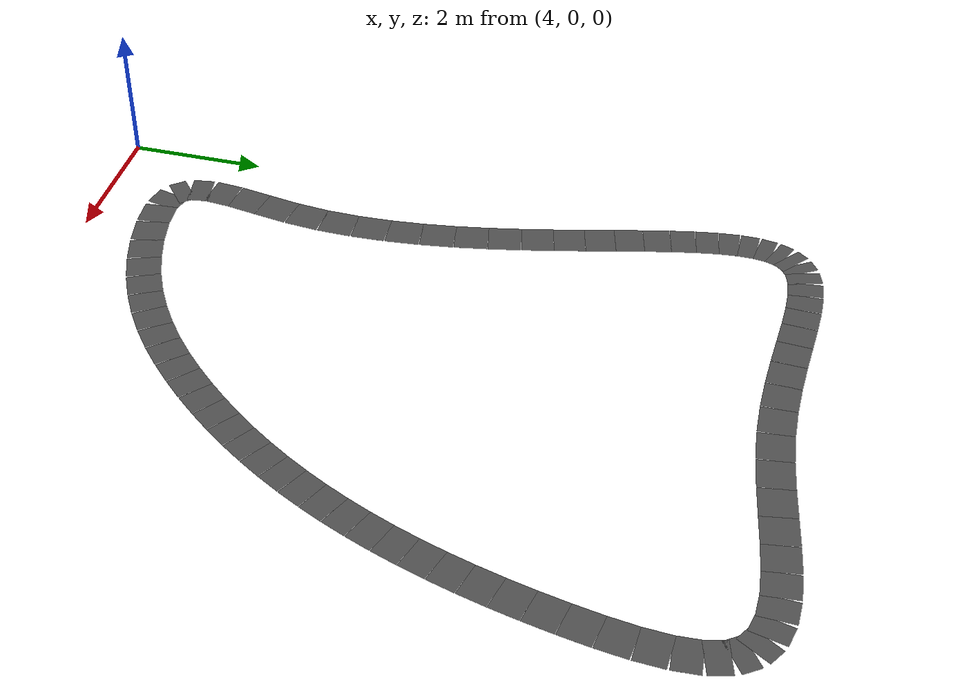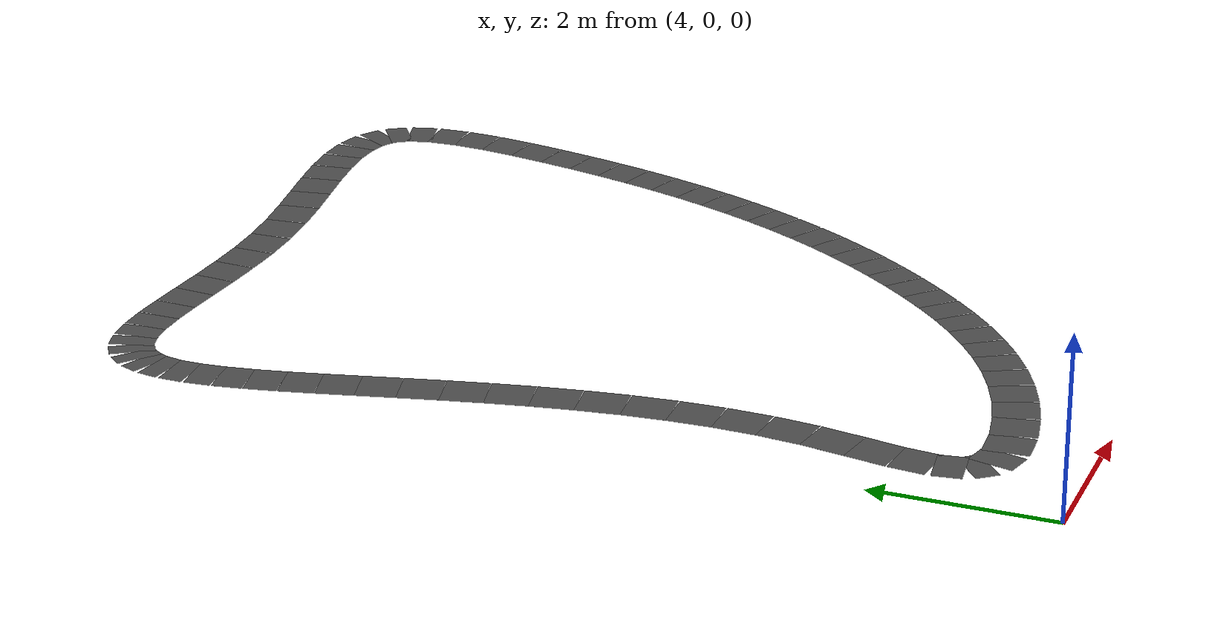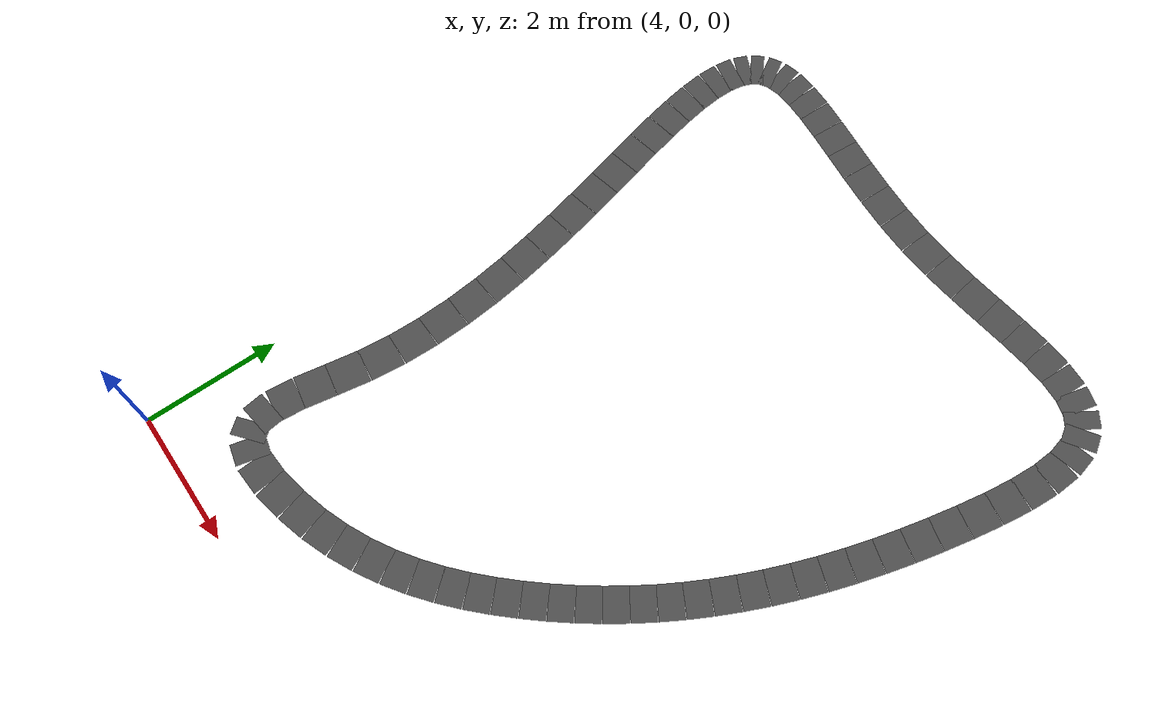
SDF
<sdf version="1.7">
 <model name="short_road">
  <model name="road_section_0">
   <static>1</static>
   <link name="road_link">
    <visual name="road_visual">
     <geometry><box><size>0.235065 0.5 0.0001</size></box></geometry>
     <material>
      <script>
       <uri>model://road_material/materials/scripts</uri>
       <uri>model://road_material/materials/textures</uri>
       <name>MyRoad/Road</name>
      </script>
     </material>
    </visual>
    <collision name="road_collision"><geometry><box><size>0.235065 0.5 0.0001</size></box></geometry></collision>
   </link>
   <pose>4.61275 10.4332 0 0 -0 0.286174</pose>
  </model>
  <model name="road_section_1">
   <static>1</static>
   <link name="road_link">
    <visual name="road_visual">
     <geometry><box><size>0.276285 0.5 0.0001</size></box></geometry>
     <material>
      <script>
       <uri>model://road_material/materials/scripts</uri>
       <uri>model://road_material/materials/textures</uri>
       <name>MyRoad/Road</name>
      </script>
     </material>
    </visual>
    <collision name="road_collision"><geometry><box><size>0.276285 0.5 0.0001</size></box></geometry></collision>
   </link>
   <pose>4.86285 10.4812 0 0 -0 0.107381</pose>
  </model>
  <model name="road_section_2">
   <static>1</static>
   <link name="road_link">
    <visual name="road_visual">
     <geometry><box><size>0.318657 0.5 0.0001</size></box></geometry>
     <material>
      <script>
       <uri>model://road_material/materials/scripts</uri>
       <uri>model://road_material/materials/textures</uri>
       <name>MyRoad/Road</name>
      </script>
     </material>
    </visual>
    <collision name="road_collision"><geometry><box><size>0.318657 0.5 0.0001</size></box></geometry></collision>
   </link>
   <pose>5.15953 10.4967 0 0 -0 0.004392</pose>
  </model>
  <model name="road_section_3">
   <static>1</static>
   <link name="road_link">
    <visual name="road_visual">
     <geometry><box><size>0.357855 0.5 0.0001</size></box></geometry>
     <material>
      <script>
       <uri>model://road_material/materials/scripts</uri>
       <uri>model://road_material/materials/textures</uri>
       <name>MyRoad/Road</name>
      </script>
     </material>
    </visual>
    <collision name="road_collision"><geometry><box><size>0.357855 0.5 0.0001</size></box></geometry></collision>
   </link>
   <pose>5.49755 10.4882 0 0 0 -0.0511</pose>
  </model>
  <model name="road_section_4">
   <static>1</static>
   <link name="road_link">
    <visual name="road_visual">
     <geometry><box><size>0.392001 0.5 0.0001</size></box></geometry>
     <material>
      <script>
       <uri>model://road_material/materials/scripts</uri>
       <uri>model://road_material/materials/textures</uri>
       <name>MyRoad/Road</name>
      </script>
     </material>
    </visual>
    <collision name="road_collision"><geometry><box><size>0.392001 0.5 0.0001</size></box></geometry></collision>
   </link>
   <pose>5.87169 10.4644 0 0 0 -0.075129</pose>
  </model>
  <model name="road_section_5">
   <static>1</static>
   <link name="road_link">
    <visual name="road_visual">
     <geometry><box><size>0.420398 0.5 0.0001</size></box></geometry>
     <material>
      <script>
       <uri>model://road_material/materials/scripts</uri>
       <uri>model://road_material/materials/textures</uri>
       <name>MyRoad/Road</name>
      </script>
     </material>
    </visual>
    <collision name="road_collision"><geometry><box><size>0.420398 0.5 0.0001</size></box></geometry></collision>
   </link>
   <pose>6.27672 10.4336 0 0 0 -0.076274</pose>
  </model>
  <model name="road_section_6">
   <static>1</static>
   <link name="road_link">
    <visual name="road_visual">
     <geometry><box><size>0.442999 0.5 0.0001</size></box></geometry>
     <material>
      <script>
       <uri>model://road_material/materials/scripts</uri>
       <uri>model://road_material/materials/textures</uri>
       <name>MyRoad/Road</name>
      </script>
     </material>
    </visual>
    <collision name="road_collision"><geometry><box><size>0.442999 0.5 0.0001</size></box></geometry></collision>
   </link>
   <pose>6.70743 10.4046 0 0 0 -0.058979</pose>
  </model>
  <model name="road_section_7">
   <static>1</static>
   <link name="road_link">
    <visual name="road_visual">
     <geometry><box><size>0.460202 0.5 0.0001</size></box></geometry>
     <material>
      <script>
       <uri>model://road_material/materials/scripts</uri>
       <uri>model://road_material/materials/textures</uri>
       <name>MyRoad/Road</name>
      </script>
     </material>
    </visual>
    <collision name="road_collision"><geometry><box><size>0.460202 0.5 0.0001</size></box></geometry></collision>
   </link>
   <pose>7.15857 10.3857 0 0 0 -0.025334</pose>
  </model>
  <model name="road_section_8">
   <static>1</static>
   <link name="road_link">
    <visual name="road_visual">
     <geometry><box><size>0.47279 0.5 0.0001</size></box></geometry>
     <material>
      <script>
       <uri>model://road_material/materials/scripts</uri>
       <uri>model://road_material/materials/textures</uri>
       <name>MyRoad/Road</name>
      </script>
     </material>
    </visual>
    <collision name="road_collision"><geometry><box><size>0.47279 0.5 0.0001</size></box></geometry></collision>
   </link>
   <pose>7.62492 10.3855 0 0 -0 0.023968</pose>
  </model>
  <model name="road_section_9">
   <static>1</static>
   <link name="road_link">
    <visual name="road_visual">
     <geometry><box><size>0.481596 0.5 0.0001</size></box></geometry>
     <material>
      <script>
       <uri>model://road_material/materials/scripts</uri>
       <uri>model://road_material/materials/textures</uri>
       <name>MyRoad/Road</name>
      </script>
     </material>
    </visual>
    <collision name="road_collision"><geometry><box><size>0.481596 0.5 0.0001</size></box></geometry></collision>
   </link>
   <pose>8.10115 10.412 0 0 -0 0.08637</pose>
  </model>
  <model name="road_section_10">
   <static>1</static>
   <link name="road_link">
    <visual name="road_visual">
     <geometry><box><size>0.483759 0.5 0.0001</size></box></geometry>
     <material>
      <script>
       <uri>model://road_material/materials/scripts</uri>
       <uri>model://road_material/materials/textures</uri>
       <name>MyRoad/Road</name>
      </script>
     </material>
    </visual>
    <collision name="road_collision"><geometry><box><size>0.483759 0.5 0.0001</size></box></geometry></collision>
   </link>
   <pose>8.58067 10.4657 0 0 -0 0.136697</pose>
  </model>
  <model name="road_section_11">
   <static>1</static>
   <link name="road_link">
    <visual name="road_visual">
     <geometry><box><size>0.475962 0.5 0.0001</size></box></geometry>
     <material>
      <script>
       <uri>model://road_material/materials/scripts</uri>
       <uri>model://road_material/materials/textures</uri>
       <name>MyRoad/Road</name>
      </script>
     </material>
    </visual>
    <collision name="road_collision"><geometry><box><size>0.475962 0.5 0.0001</size></box></geometry></collision>
   </link>
   <pose>9.05515 10.5371 0 0 -0 0.162422</pose>
  </model>
  <model name="road_section_12">
   <static>1</static>
   <link name="road_link">
    <visual name="road_visual">
     <geometry><box><size>0.457265 0.5 0.0001</size></box></geometry>
     <material>
      <script>
       <uri>model://road_material/materials/scripts</uri>
       <uri>model://road_material/materials/textures</uri>
       <name>MyRoad/Road</name>
      </script>
     </material>
    </visual>
    <collision name="road_collision"><geometry><box><size>0.457265 0.5 0.0001</size></box></geometry></collision>
   </link>
   <pose>9.51556 10.6129 0 0 -0 0.16385</pose>
  </model>
  <model name="road_section_13">
   <static>1</static>
   <link name="road_link">
    <visual name="road_visual">
     <geometry><box><size>0.427635 0.5 0.0001</size></box></geometry>
     <material>
      <script>
       <uri>model://road_material/materials/scripts</uri>
       <uri>model://road_material/materials/textures</uri>
       <name>MyRoad/Road</name>
      </script>
     </material>
    </visual>
    <collision name="road_collision"><geometry><box><size>0.427635 0.5 0.0001</size></box></geometry></collision>
   </link>
   <pose>9.95292 10.6796 0 0 -0 0.137902</pose>
  </model>
  <model name="road_section_14">
   <static>1</static>
   <link name="road_link">
    <visual name="road_visual">
     <geometry><box><size>0.388128 0.5 0.0001</size></box></geometry>
     <material>
      <script>
       <uri>model://road_material/materials/scripts</uri>
       <uri>model://road_material/materials/textures</uri>
       <name>MyRoad/Road</name>
      </script>
     </material>
    </visual>
    <collision name="road_collision"><geometry><box><size>0.388128 0.5 0.0001</size></box></geometry></collision>
   </link>
   <pose>10.3582 10.7238 0 0 -0 0.076229</pose>
  </model>
  <model name="road_section_15">
   <static>1</static>
   <link name="road_link">
    <visual name="road_visual">
     <geometry><box><size>0.341669 0.5 0.0001</size></box></geometry>
     <material>
      <script>
       <uri>model://road_material/materials/scripts</uri>
       <uri>model://road_material/materials/textures</uri>
       <name>MyRoad/Road</name>
      </script>
     </material>
    </visual>
    <collision name="road_collision"><geometry><box><size>0.341669 0.5 0.0001</size></box></geometry></collision>
   </link>
   <pose>10.7224 10.732 0 0 0 -0.03833</pose>
  </model>
  <model name="road_section_16">
   <static>1</static>
   <link name="road_link">
    <visual name="road_visual">
     <geometry><box><size>0.295047 0.5 0.0001</size></box></geometry>
     <material>
      <script>
       <uri>model://road_material/materials/scripts</uri>
       <uri>model://road_material/materials/textures</uri>
       <name>MyRoad/Road</name>
      </script>
     </material>
    </visual>
    <collision name="road_collision"><geometry><box><size>0.295047 0.5 0.0001</size></box></geometry></collision>
   </link>
   <pose>11.0365 10.6909 0 0 0 -0.236631</pose>
  </model>
  <model name="road_section_17">
   <static>1</static>
   <link name="road_link">
    <visual name="road_visual">
     <geometry><box><size>0.262788 0.5 0.0001</size></box></geometry>
     <material>
      <script>
       <uri>model://road_material/materials/scripts</uri>
       <uri>model://road_material/materials/textures</uri>
       <name>MyRoad/Road</name>
      </script>
     </material>
    </visual>
    <collision name="road_collision"><geometry><box><size>0.262788 0.5 0.0001</size></box></geometry></collision>
   </link>
   <pose>11.2916 10.587 0 0 0 -0.55586</pose>
  </model>
  <model name="road_section_18">
   <static>1</static>
   <link name="road_link">
    <visual name="road_visual">
     <geometry><box><size>0.267747 0.5 0.0001</size></box></geometry>
     <material>
      <script>
       <uri>model://road_material/materials/scripts</uri>
       <uri>model://road_material/materials/textures</uri>
       <name>MyRoad/Road</name>
      </script>
     </material>
    </visual>
    <collision name="road_collision"><geometry><box><size>0.267747 0.5 0.0001</size></box></geometry></collision>
   </link>
   <pose>11.4786 10.407 0 0 0 -0.972123</pose>
  </model>
  <model name="road_section_19">
   <static>1</static>
   <link name="road_link">
    <visual name="road_visual">
     <geometry><box><size>0.312787 0.5 0.0001</size></box></geometry>
     <material>
      <script>
       <uri>model://road_material/materials/scripts</uri>
       <uri>model://road_material/materials/textures</uri>
       <name>MyRoad/Road</name>
      </script>
     </material>
    </visual>
    <collision name="road_collision"><geometry><box><size>0.312787 0.5 0.0001</size></box></geometry></collision>
   </link>
   <pose>11.5937 10.1452 0 0 0 -1.31448</pose>
  </model>
  <model name="road_section_20">
   <static>1</static>
   <link name="road_link">
    <visual name="road_visual">
     <geometry><box><size>0.365935 0.5 0.0001</size></box></geometry>
     <material>
      <script>
       <uri>model://road_material/materials/scripts</uri>
       <uri>model://road_material/materials/textures</uri>
       <name>MyRoad/Road</name>
      </script>
     </material>
    </visual>
    <collision name="road_collision"><geometry><box><size>0.365935 0.5 0.0001</size></box></geometry></collision>
   </link>
   <pose>11.6434 9.81119 0 0 0 -1.5157</pose>
  </model>
  <model name="road_section_21">
   <static>1</static>
   <link name="road_link">
    <visual name="road_visual">
     <geometry><box><size>0.409355 0.5 0.0001</size></box></geometry>
     <material>
      <script>
       <uri>model://road_material/materials/scripts</uri>
       <uri>model://road_material/materials/textures</uri>
       <name>MyRoad/Road</name>
      </script>
     </material>
    </visual>
    <collision name="road_collision"><geometry><box><size>0.409355 0.5 0.0001</size></box></geometry></collision>
   </link>
   <pose>11.6406 9.42423 0 0 0 -1.63394</pose>
  </model>
  <model name="road_section_22">
   <static>1</static>
   <link name="road_link">
    <visual name="road_visual">
     <geometry><box><size>0.436008 0.5 0.0001</size></box></geometry>
     <material>
      <script>
       <uri>model://road_material/materials/scripts</uri>
       <uri>model://road_material/materials/textures</uri>
       <name>MyRoad/Road</name>
      </script>
     </material>
    </visual>
    <collision name="road_collision"><geometry><box><size>0.436008 0.5 0.0001</size></box></geometry></collision>
   </link>
   <pose>11.5984 9.00394 0 0 0 -1.70571</pose>
  </model>
  <model name="road_section_23">
   <static>1</static>
   <link name="road_link">
    <visual name="road_visual">
     <geometry><box><size>0.442881 0.5 0.0001</size></box></geometry>
     <material>
      <script>
       <uri>model://road_material/materials/scripts</uri>
       <uri>model://road_material/materials/textures</uri>
       <name>MyRoad/Road</name>
      </script>
     </material>
    </visual>
    <collision name="road_collision"><geometry><box><size>0.442881 0.5 0.0001</size></box></geometry></collision>
   </link>
   <pose>11.5299 8.56996 0 0 0 -1.74853</pose>
  </model>
  <model name="road_section_24">
   <static>1</static>
   <link name="road_link">
    <visual name="road_visual">
     <geometry><box><size>0.43368 0.5 0.0001</size></box></geometry>
     <material>
      <script>
       <uri>model://road_material/materials/scripts</uri>
       <uri>model://road_material/materials/textures</uri>
       <name>MyRoad/Road</name>
      </script>
     </material>
    </visual>
    <collision name="road_collision"><geometry><box><size>0.43368 0.5 0.0001</size></box></geometry></collision>
   </link>
   <pose>11.4468 8.13966 0 0 0 -1.77475</pose>
  </model>
  <model name="road_section_25">
   <static>1</static>
   <link name="road_link">
    <visual name="road_visual">
     <geometry><box><size>0.422627 0.5 0.0001</size></box></geometry>
     <material>
      <script>
       <uri>model://road_material/materials/scripts</uri>
       <uri>model://road_material/materials/textures</uri>
       <name>MyRoad/Road</name>
      </script>
     </material>
    </visual>
    <collision name="road_collision"><geometry><box><size>0.422627 0.5 0.0001</size></box></geometry></collision>
   </link>
   <pose>11.3549 7.72153 0 0 0 -1.80001</pose>
  </model>
  <model name="road_section_26">
   <static>1</static>
   <link name="road_link">
    <visual name="road_visual">
     <geometry><box><size>0.412348 0.5 0.0001</size></box></geometry>
     <material>
      <script>
       <uri>model://road_material/materials/scripts</uri>
       <uri>model://road_material/materials/textures</uri>
       <name>MyRoad/Road</name>
      </script>
     </material>
    </visual>
    <collision name="road_collision"><geometry><box><size>0.412348 0.5 0.0001</size></box></geometry></collision>
   </link>
   <pose>11.2547 7.31629 0 0 0 -1.82684</pose>
  </model>
  <model name="road_section_27">
   <static>1</static>
   <link name="road_link">
    <visual name="road_visual">
     <geometry><box><size>0.402871 0.5 0.0001</size></box></geometry>
     <material>
      <script>
       <uri>model://road_material/materials/scripts</uri>
       <uri>model://road_material/materials/textures</uri>
       <name>MyRoad/Road</name>
      </script>
     </material>
    </visual>
    <collision name="road_collision"><geometry><box><size>0.402871 0.5 0.0001</size></box></geometry></collision>
   </link>
   <pose>11.1459 6.9235 0 0 0 -1.85522</pose>
  </model>
  <model name="road_section_28">
   <static>1</static>
   <link name="road_link">
    <visual name="road_visual">
     <geometry><box><size>0.394228 0.5 0.0001</size></box></geometry>
     <material>
      <script>
       <uri>model://road_material/materials/scripts</uri>
       <uri>model://road_material/materials/textures</uri>
       <name>MyRoad/Road</name>
      </script>
     </material>
    </visual>
    <collision name="road_collision"><geometry><box><size>0.394228 0.5 0.0001</size></box></geometry></collision>
   </link>
   <pose>11.0285 6.5427 0 0 0 -1.88511</pose>
  </model>
  <model name="road_section_29">
   <static>1</static>
   <link name="road_link">
    <visual name="road_visual">
     <geometry><box><size>0.386449 0.5 0.0001</size></box></geometry>
     <material>
      <script>
       <uri>model://road_material/materials/scripts</uri>
       <uri>model://road_material/materials/textures</uri>
       <name>MyRoad/Road</name>
      </script>
     </material>
    </visual>
    <collision name="road_collision"><geometry><box><size>0.386449 0.5 0.0001</size></box></geometry></collision>
   </link>
   <pose>10.9021 6.17344 0 0 0 -1.91644</pose>
  </model>
  <model name="road_section_30">
   <static>1</static>
   <link name="road_link">
    <visual name="road_visual">
     <geometry><box><size>0.379561 0.5 0.0001</size></box></geometry>
     <material>
      <script>
       <uri>model://road_material/materials/scripts</uri>
       <uri>model://road_material/materials/textures</uri>
       <name>MyRoad/Road</name>
      </script>
     </material>
    </visual>
    <collision name="road_collision"><geometry><box><size>0.379561 0.5 0.0001</size></box></geometry></collision>
   </link>
   <pose>10.7665 5.81528 0 0 0 -1.94912</pose>
  </model>
  <model name="road_section_31">
   <static>1</static>
   <link name="road_link">
    <visual name="road_visual">
     <geometry><box><size>0.373591 0.5 0.0001</size></box></geometry>
     <material>
      <script>
       <uri>model://road_material/materials/scripts</uri>
       <uri>model://road_material/materials/textures</uri>
       <name>MyRoad/Road</name>
      </script>
     </material>
    </visual>
    <collision name="road_collision"><geometry><box><size>0.373591 0.5 0.0001</size></box></geometry></collision>
   </link>
   <pose>10.6216 5.46778 0 0 0 -1.98301</pose>
  </model>
  <model name="road_section_32">
   <static>1</static>
   <link name="road_link">
    <visual name="road_visual">
     <geometry><box><size>0.368561 0.5 0.0001</size></box></geometry>
     <material>
      <script>
       <uri>model://road_material/materials/scripts</uri>
       <uri>model://road_material/materials/textures</uri>
       <name>MyRoad/Road</name>
      </script>
     </material>
    </visual>
    <collision name="road_collision"><geometry><box><size>0.368561 0.5 0.0001</size></box></geometry></collision>
   </link>
   <pose>10.467 5.13047 0 0 0 -2.01797</pose>
  </model>
  <model name="road_section_33">
   <static>1</static>
   <link name="road_link">
    <visual name="road_visual">
     <geometry><box><size>0.364492 0.5 0.0001</size></box></geometry>
     <material>
      <script>
       <uri>model://road_material/materials/scripts</uri>
       <uri>model://road_material/materials/textures</uri>
       <name>MyRoad/Road</name>
      </script>
     </material>
    </visual>
    <collision name="road_collision"><geometry><box><size>0.364492 0.5 0.0001</size></box></geometry></collision>
   </link>
   <pose>10.3027 4.80291 0 0 0 -2.0538</pose>
  </model>
  <model name="road_section_34">
   <static>1</static>
   <link name="road_link">
    <visual name="road_visual">
     <geometry><box><size>0.361398 0.5 0.0001</size></box></geometry>
     <material>
      <script>
       <uri>model://road_material/materials/scripts</uri>
       <uri>model://road_material/materials/textures</uri>
       <name>MyRoad/Road</name>
      </script>
     </material>
    </visual>
    <collision name="road_collision"><geometry><box><size>0.361398 0.5 0.0001</size></box></geometry></collision>
   </link>
   <pose>10.1284 4.48465 0 0 0 -2.09029</pose>
  </model>
  <model name="road_section_35">
   <static>1</static>
   <link name="road_link">
    <visual name="road_visual">
     <geometry><box><size>0.359288 0.5 0.0001</size></box></geometry>
     <material>
      <script>
       <uri>model://road_material/materials/scripts</uri>
       <uri>model://road_material/materials/textures</uri>
       <name>MyRoad/Road</name>
      </script>
     </material>
    </visual>
    <collision name="road_collision"><geometry><box><size>0.359288 0.5 0.0001</size></box></geometry></collision>
   </link>
   <pose>9.94378 4.17524 0 0 0 -2.12721</pose>
  </model>
  <model name="road_section_36">
   <static>1</static>
   <link name="road_link">
    <visual name="road_visual">
     <geometry><box><size>0.358165 0.5 0.0001</size></box></geometry>
     <material>
      <script>
       <uri>model://road_material/materials/scripts</uri>
       <uri>model://road_material/materials/textures</uri>
       <name>MyRoad/Road</name>
      </script>
     </material>
    </visual>
    <collision name="road_collision"><geometry><box><size>0.358165 0.5 0.0001</size></box></geometry></collision>
   </link>
   <pose>9.74875 3.87424 0 0 0 -2.16431</pose>
  </model>
  <model name="road_section_37">
   <static>1</static>
   <link name="road_link">
    <visual name="road_visual">
     <geometry><box><size>0.358029 0.5 0.0001</size></box></geometry>
     <material>
      <script>
       <uri>model://road_material/materials/scripts</uri>
       <uri>model://road_material/materials/textures</uri>
       <name>MyRoad/Road</name>
      </script>
     </material>
    </visual>
    <collision name="road_collision"><geometry><box><size>0.358029 0.5 0.0001</size></box></geometry></collision>
   </link>
   <pose>9.54305 3.58119 0 0 0 -2.20134</pose>
  </model>
  <model name="road_section_38">
   <static>1</static>
   <link name="road_link">
    <visual name="road_visual">
     <geometry><box><size>0.358869 0.5 0.0001</size></box></geometry>
     <material>
      <script>
       <uri>model://road_material/materials/scripts</uri>
       <uri>model://road_material/materials/textures</uri>
       <name>MyRoad/Road</name>
      </script>
     </material>
    </visual>
    <collision name="road_collision"><geometry><box><size>0.358869 0.5 0.0001</size></box></geometry></collision>
   </link>
   <pose>9.32647 3.29565 0 0 0 -2.23805</pose>
  </model>
  <model name="road_section_39">
   <static>1</static>
   <link name="road_link">
    <visual name="road_visual">
     <geometry><box><size>0.360672 0.5 0.0001</size></box></geometry>
     <material>
      <script>
       <uri>model://road_material/materials/scripts</uri>
       <uri>model://road_material/materials/textures</uri>
       <name>MyRoad/Road</name>
      </script>
     </material>
    </visual>
    <collision name="road_collision"><geometry><box><size>0.360672 0.5 0.0001</size></box></geometry></collision>
   </link>
   <pose>9.09878 3.01717 0 0 0 -2.27418</pose>
  </model>
  <model name="road_section_40">
   <static>1</static>
   <link name="road_link">
    <visual name="road_visual">
     <geometry><box><size>0.363151 0.5 0.0001</size></box></geometry>
     <material>
      <script>
       <uri>model://road_material/materials/scripts</uri>
       <uri>model://road_material/materials/textures</uri>
       <name>MyRoad/Road</name>
      </script>
     </material>
    </visual>
    <collision name="road_collision"><geometry><box><size>0.363151 0.5 0.0001</size></box></geometry></collision>
   </link>
   <pose>8.85963 2.74562 0 0 0 -2.3114</pose>
  </model>
  <model name="road_section_41">
   <static>1</static>
   <link name="road_link">
    <visual name="road_visual">
     <geometry><box><size>0.365593 0.5 0.0001</size></box></geometry>
     <material>
      <script>
       <uri>model://road_material/materials/scripts</uri>
       <uri>model://road_material/materials/textures</uri>
       <name>MyRoad/Road</name>
      </script>
     </material>
    </visual>
    <collision name="road_collision"><geometry><box><size>0.365593 0.5 0.0001</size></box></geometry></collision>
   </link>
   <pose>8.60793 2.48227 0 0 0 -2.35558</pose>
  </model>
  <model name="road_section_42">
   <static>1</static>
   <link name="road_link">
    <visual name="road_visual">
     <geometry><box><size>0.36822 0.5 0.0001</size></box></geometry>
     <material>
      <script>
       <uri>model://road_material/materials/scripts</uri>
       <uri>model://road_material/materials/textures</uri>
       <name>MyRoad/Road</name>
      </script>
     </material>
    </visual>
    <collision name="road_collision"><geometry><box><size>0.36822 0.5 0.0001</size></box></geometry></collision>
   </link>
   <pose>8.34203 2.22964 0 0 0 -2.40783</pose>
  </model>
  <model name="road_section_43">
   <static>1</static>
   <link name="road_link">
    <visual name="road_visual">
     <geometry><box><size>0.371513 0.5 0.0001</size></box></geometry>
     <material>
      <script>
       <uri>model://road_material/materials/scripts</uri>
       <uri>model://road_material/materials/textures</uri>
       <name>MyRoad/Road</name>
      </script>
     </material>
    </visual>
    <collision name="road_collision"><geometry><box><size>0.371513 0.5 0.0001</size></box></geometry></collision>
   </link>
   <pose>8.06012 1.99046 0 0 0 -2.46794</pose>
  </model>
  <model name="road_section_44">
   <static>1</static>
   <link name="road_link">
    <visual name="road_visual">
     <geometry><box><size>0.376017 0.5 0.0001</size></box></geometry>
     <material>
      <script>
       <uri>model://road_material/materials/scripts</uri>
       <uri>model://road_material/materials/textures</uri>
       <name>MyRoad/Road</name>
      </script>
     </material>
    </visual>
    <collision name="road_collision"><geometry><box><size>0.376017 0.5 0.0001</size></box></geometry></collision>
   </link>
   <pose>7.76042 1.76747 0 0 0 -2.53546</pose>
  </model>
  <model name="road_section_45">
   <static>1</static>
   <link name="road_link">
    <visual name="road_visual">
     <geometry><box><size>0.382328 0.5 0.0001</size></box></geometry>
     <material>
      <script>
       <uri>model://road_material/materials/scripts</uri>
       <uri>model://road_material/materials/textures</uri>
       <name>MyRoad/Road</name>
      </script>
     </material>
    </visual>
    <collision name="road_collision"><geometry><box><size>0.382328 0.5 0.0001</size></box></geometry></collision>
   </link>
   <pose>7.44116 1.5634 0 0 0 -2.60962</pose>
  </model>
  <model name="road_section_46">
   <static>1</static>
   <link name="road_link">
    <visual name="road_visual">
     <geometry><box><size>0.391065 0.5 0.0001</size></box></geometry>
     <material>
      <script>
       <uri>model://road_material/materials/scripts</uri>
       <uri>model://road_material/materials/textures</uri>
       <name>MyRoad/Road</name>
      </script>
     </material>
    </visual>
    <collision name="road_collision"><geometry><box><size>0.391065 0.5 0.0001</size></box></geometry></collision>
   </link>
   <pose>7.10055 1.38098 0 0 0 -2.68928</pose>
  </model>
  <model name="road_section_47">
   <static>1</static>
   <link name="road_link">
    <visual name="road_visual">
     <geometry><box><size>0.402834 0.5 0.0001</size></box></geometry>
     <material>
      <script>
       <uri>model://road_material/materials/scripts</uri>
       <uri>model://road_material/materials/textures</uri>
       <name>MyRoad/Road</name>
      </script>
     </material>
    </visual>
    <collision name="road_collision"><geometry><box><size>0.402834 0.5 0.0001</size></box></geometry></collision>
   </link>
   <pose>6.73679 1.22294 0 0 0 -2.77294</pose>
  </model>
  <model name="road_section_48">
   <static>1</static>
   <link name="road_link">
    <visual name="road_visual">
     <geometry><box><size>0.418192 0.5 0.0001</size></box></geometry>
     <material>
      <script>
       <uri>model://road_material/materials/scripts</uri>
       <uri>model://road_material/materials/textures</uri>
       <name>MyRoad/Road</name>
      </script>
     </material>
    </visual>
    <collision name="road_collision"><geometry><box><size>0.418192 0.5 0.0001</size></box></geometry></collision>
   </link>
   <pose>6.34812 1.09202 0 0 0 -2.85883</pose>
  </model>
  <model name="road_section_49">
   <static>1</static>
   <link name="road_link">
    <visual name="road_visual">
     <geometry><box><size>0.433934 0.5 0.0001</size></box></geometry>
     <material>
      <script>
       <uri>model://road_material/materials/scripts</uri>
       <uri>model://road_material/materials/textures</uri>
       <name>MyRoad/Road</name>
      </script>
     </material>
    </visual>
    <collision name="road_collision"><geometry><box><size>0.433934 0.5 0.0001</size></box></geometry></collision>
   </link>
   <pose>5.93443 0.991807 0 0 0 -2.9474</pose>
  </model>
  <model name="road_section_50">
   <static>1</static>
   <link name="road_link">
    <visual name="road_visual">
     <geometry><box><size>0.406907 0.5 0.0001</size></box></geometry>
     <material>
      <script>
       <uri>model://road_material/materials/scripts</uri>
       <uri>model://road_material/materials/textures</uri>
       <name>MyRoad/Road</name>
      </script>
     </material>
    </visual>
    <collision name="road_collision"><geometry><box><size>0.406907 0.5 0.0001</size></box></geometry></collision>
   </link>
   <pose>5.51847 0.937481 0 0 0 -3.08033</pose>
  </model>
  <model name="road_section_51">
   <static>1</static>
   <link name="road_link">
    <visual name="road_visual">
     <geometry><box><size>0.322813 0.5 0.0001</size></box></geometry>
     <material>
      <script>
       <uri>model://road_material/materials/scripts</uri>
       <uri>model://road_material/materials/textures</uri>
       <name>MyRoad/Road</name>
      </script>
     </material>
    </visual>
    <collision name="road_collision"><geometry><box><size>0.322813 0.5 0.0001</size></box></geometry></collision>
   </link>
   <pose>5.15833 0.962159 0 0 -0 2.90944</pose>
  </model>
  <model name="road_section_52">
   <static>1</static>
   <link name="road_link">
    <visual name="road_visual">
     <geometry><box><size>0.263462 0.5 0.0001</size></box></geometry>
     <material>
      <script>
       <uri>model://road_material/materials/scripts</uri>
       <uri>model://road_material/materials/textures</uri>
       <name>MyRoad/Road</name>
      </script>
     </material>
    </visual>
    <collision name="road_collision"><geometry><box><size>0.263462 0.5 0.0001</size></box></geometry></collision>
   </link>
   <pose>4.91727 1.10079 0 0 -0 2.26205</pose>
  </model>
  <model name="road_section_53">
   <static>1</static>
   <link name="road_link">
    <visual name="road_visual">
     <geometry><box><size>0.319118 0.5 0.0001</size></box></geometry>
     <material>
      <script>
       <uri>model://road_material/materials/scripts</uri>
       <uri>model://road_material/materials/textures</uri>
       <name>MyRoad/Road</name>
      </script>
     </material>
    </visual>
    <collision name="road_collision"><geometry><box><size>0.319118 0.5 0.0001</size></box></geometry></collision>
   </link>
   <pose>4.81156 1.36035 0 0 -0 1.70743</pose>
  </model>
  <model name="road_section_54">
   <static>1</static>
   <link name="road_link">
    <visual name="road_visual">
     <geometry><box><size>0.404289 0.5 0.0001</size></box></geometry>
     <material>
      <script>
       <uri>model://road_material/materials/scripts</uri>
       <uri>model://road_material/materials/textures</uri>
       <name>MyRoad/Road</name>
      </script>
     </material>
    </visual>
    <collision name="road_collision"><geometry><box><size>0.404289 0.5 0.0001</size></box></geometry></collision>
   </link>
   <pose>4.80985 1.71957 0 0 -0 1.47158</pose>
  </model>
  <model name="road_section_55">
   <static>1</static>
   <link name="road_link">
    <visual name="road_visual">
     <geometry><box><size>0.468787 0.5 0.0001</size></box></geometry>
     <material>
      <script>
       <uri>model://road_material/materials/scripts</uri>
       <uri>model://road_material/materials/textures</uri>
       <name>MyRoad/Road</name>
      </script>
     </material>
    </visual>
    <collision name="road_collision"><geometry><box><size>0.468787 0.5 0.0001</size></box></geometry></collision>
   </link>
   <pose>4.87116 2.15145 0 0 -0 1.39371</pose>
  </model>
  <model name="road_section_56">
   <static>1</static>
   <link name="road_link">
    <visual name="road_visual">
     <geometry><box><size>0.500729 0.5 0.0001</size></box></geometry>
     <material>
      <script>
       <uri>model://road_material/materials/scripts</uri>
       <uri>model://road_material/materials/textures</uri>
       <name>MyRoad/Road</name>
      </script>
     </material>
    </visual>
    <collision name="road_collision"><geometry><box><size>0.500729 0.5 0.0001</size></box></geometry></collision>
   </link>
   <pose>4.95453 2.62898 0 0 -0 1.40195</pose>
  </model>
  <model name="road_section_57">
   <static>1</static>
   <link name="road_link">
    <visual name="road_visual">
     <geometry><box><size>0.504897 0.5 0.0001</size></box></geometry>
     <material>
      <script>
       <uri>model://road_material/materials/scripts</uri>
       <uri>model://road_material/materials/textures</uri>
       <name>MyRoad/Road</name>
      </script>
     </material>
    </visual>
    <collision name="road_collision"><geometry><box><size>0.504897 0.5 0.0001</size></box></geometry></collision>
   </link>
   <pose>5.02225 3.12693 0 0 -0 1.46901</pose>
  </model>
  <model name="road_section_58">
   <static>1</static>
   <link name="road_link">
    <visual name="road_visual">
     <geometry><box><size>0.503993 0.5 0.0001</size></box></geometry>
     <material>
      <script>
       <uri>model://road_material/materials/scripts</uri>
       <uri>model://road_material/materials/textures</uri>
       <name>MyRoad/Road</name>
      </script>
     </material>
    </visual>
    <collision name="road_collision"><geometry><box><size>0.503993 0.5 0.0001</size></box></geometry></collision>
   </link>
   <pose>5.05514 3.62996 0 0 -0 1.54207</pose>
  </model>
  <model name="road_section_59">
   <static>1</static>
   <link name="road_link">
    <visual name="road_visual">
     <geometry><box><size>0.503131 0.5 0.0001</size></box></geometry>
     <material>
      <script>
       <uri>model://road_material/materials/scripts</uri>
       <uri>model://road_material/materials/textures</uri>
       <name>MyRoad/Road</name>
      </script>
     </material>
    </visual>
    <collision name="road_collision"><geometry><box><size>0.503131 0.5 0.0001</size></box></geometry></collision>
   </link>
   <pose>5.05361 4.13327 0 0 -0 1.60568</pose>
  </model>
  <model name="road_section_60">
   <static>1</static>
   <link name="road_link">
    <visual name="road_visual">
     <geometry><box><size>0.501405 0.5 0.0001</size></box></geometry>
     <material>
      <script>
       <uri>model://road_material/materials/scripts</uri>
       <uri>model://road_material/materials/textures</uri>
       <name>MyRoad/Road</name>
      </script>
     </material>
    </visual>
    <collision name="road_collision"><geometry><box><size>0.501405 0.5 0.0001</size></box></geometry></collision>
   </link>
   <pose>5.02245 4.63438 0 0 -0 1.66021</pose>
  </model>
  <model name="road_section_61">
   <static>1</static>
   <link name="road_link">
    <visual name="road_visual">
     <geometry><box><size>0.498071 0.5 0.0001</size></box></geometry>
     <material>
      <script>
       <uri>model://road_material/materials/scripts</uri>
       <uri>model://road_material/materials/textures</uri>
       <name>MyRoad/Road</name>
      </script>
     </material>
    </visual>
    <collision name="road_collision"><geometry><box><size>0.498071 0.5 0.0001</size></box></geometry></collision>
   </link>
   <pose>4.96647 5.13084 0 0 -0 1.70611</pose>
  </model>
  <model name="road_section_62">
   <static>1</static>
   <link name="road_link">
    <visual name="road_visual">
     <geometry><box><size>0.492528 0.5 0.0001</size></box></geometry>
     <material>
      <script>
       <uri>model://road_material/materials/scripts</uri>
       <uri>model://road_material/materials/textures</uri>
       <name>MyRoad/Road</name>
      </script>
     </material>
    </visual>
    <collision name="road_collision"><geometry><box><size>0.492528 0.5 0.0001</size></box></geometry></collision>
   </link>
   <pose>4.89047 5.62018 0 0 -0 1.74385</pose>
  </model>
  <model name="road_section_63">
   <static>1</static>
   <link name="road_link">
    <visual name="road_visual">
     <geometry><box><size>0.484304 0.5 0.0001</size></box></geometry>
     <material>
      <script>
       <uri>model://road_material/materials/scripts</uri>
       <uri>model://road_material/materials/textures</uri>
       <name>MyRoad/Road</name>
      </script>
     </material>
    </visual>
    <collision name="road_collision"><geometry><box><size>0.484304 0.5 0.0001</size></box></geometry></collision>
   </link>
   <pose>4.79925 6.09995 0 0 -0 1.77377</pose>
  </model>
  <model name="road_section_64">
   <static>1</static>
   <link name="road_link">
    <visual name="road_visual">
     <geometry><box><size>0.473038 0.5 0.0001</size></box></geometry>
     <material>
      <script>
       <uri>model://road_material/materials/scripts</uri>
       <uri>model://road_material/materials/textures</uri>
       <name>MyRoad/Road</name>
      </script>
     </material>
    </visual>
    <collision name="road_collision"><geometry><box><size>0.473038 0.5 0.0001</size></box></geometry></collision>
   </link>
   <pose>4.69761 6.56768 0 0 -0 1.79602</pose>
  </model>
  <model name="road_section_65">
   <static>1</static>
   <link name="road_link">
    <visual name="road_visual">
     <geometry><box><size>0.458468 0.5 0.0001</size></box></geometry>
     <material>
      <script>
       <uri>model://road_material/materials/scripts</uri>
       <uri>model://road_material/materials/textures</uri>
       <name>MyRoad/Road</name>
      </script>
     </material>
    </visual>
    <collision name="road_collision"><geometry><box><size>0.458468 0.5 0.0001</size></box></geometry></collision>
   </link>
   <pose>4.59037 7.0209 0 0 -0 1.81051</pose>
  </model>
  <model name="road_section_66">
   <static>1</static>
   <link name="road_link">
    <visual name="road_visual">
     <geometry><box><size>0.440425 0.5 0.0001</size></box></geometry>
     <material>
      <script>
       <uri>model://road_material/materials/scripts</uri>
       <uri>model://road_material/materials/textures</uri>
       <name>MyRoad/Road</name>
      </script>
     </material>
    </visual>
    <collision name="road_collision"><geometry><box><size>0.440425 0.5 0.0001</size></box></geometry></collision>
   </link>
   <pose>4.48231 7.45716 0 0 -0 1.81682</pose>
  </model>
  <model name="road_section_67">
   <static>1</static>
   <link name="road_link">
    <visual name="road_visual">
     <geometry><box><size>0.418834 0.5 0.0001</size></box></geometry>
     <material>
      <script>
       <uri>model://road_material/materials/scripts</uri>
       <uri>model://road_material/materials/textures</uri>
       <name>MyRoad/Road</name>
      </script>
     </material>
    </visual>
    <collision name="road_collision"><geometry><box><size>0.418834 0.5 0.0001</size></box></geometry></collision>
   </link>
   <pose>4.37824 7.874 0 0 -0 1.81402</pose>
  </model>
  <model name="road_section_68">
   <static>1</static>
   <link name="road_link">
    <visual name="road_visual">
     <geometry><box><size>0.393735 0.5 0.0001</size></box></geometry>
     <material>
      <script>
       <uri>model://road_material/materials/scripts</uri>
       <uri>model://road_material/materials/textures</uri>
       <name>MyRoad/Road</name>
      </script>
     </material>
    </visual>
    <collision name="road_collision"><geometry><box><size>0.393735 0.5 0.0001</size></box></geometry></collision>
   </link>
   <pose>4.28297 8.26894 0 0 -0 1.80057</pose>
  </model>
  <model name="road_section_69">
   <static>1</static>
   <link name="road_link">
    <visual name="road_visual">
     <geometry><box><size>0.365313 0.5 0.0001</size></box></geometry>
     <material>
      <script>
       <uri>model://road_material/materials/scripts</uri>
       <uri>model://road_material/materials/textures</uri>
       <name>MyRoad/Road</name>
      </script>
     </material>
    </visual>
    <collision name="road_collision"><geometry><box><size>0.365313 0.5 0.0001</size></box></geometry></collision>
   </link>
   <pose>4.20129 8.63954 0 0 -0 1.77388</pose>
  </model>
  <model name="road_section_70">
   <static>1</static>
   <link name="road_link">
    <visual name="road_visual">
     <geometry><box><size>0.333976 0.5 0.0001</size></box></geometry>
     <material>
      <script>
       <uri>model://road_material/materials/scripts</uri>
       <uri>model://road_material/materials/textures</uri>
       <name>MyRoad/Road</name>
      </script>
     </material>
    </visual>
    <collision name="road_collision"><geometry><box><size>0.333976 0.5 0.0001</size></box></geometry></collision>
   </link>
   <pose>4.13801 8.98332 0 0 -0 1.7298</pose>
  </model>
  <model name="road_section_71">
   <static>1</static>
   <link name="road_link">
    <visual name="road_visual">
     <geometry><box><size>0.300498 0.5 0.0001</size></box></geometry>
     <material>
      <script>
       <uri>model://road_material/materials/scripts</uri>
       <uri>model://road_material/materials/textures</uri>
       <name>MyRoad/Road</name>
      </script>
     </material>
    </visual>
    <collision name="road_collision"><geometry><box><size>0.300498 0.5 0.0001</size></box></geometry></collision>
   </link>
   <pose>4.09793 9.29783 0 0 -0 1.6617</pose>
  </model>
  <model name="road_section_72">
   <static>1</static>
   <link name="road_link">
    <visual name="road_visual">
     <geometry><box><size>0.266309 0.5 0.0001</size></box></geometry>
     <material>
      <script>
       <uri>model://road_material/materials/scripts</uri>
       <uri>model://road_material/materials/textures</uri>
       <name>MyRoad/Road</name>
      </script>
     </material>
    </visual>
    <collision name="road_collision"><geometry><box><size>0.266309 0.5 0.0001</size></box></geometry></collision>
   </link>
   <pose>4.08586 9.58061 0 0 -0 1.55906</pose>
  </model>
  <model name="road_section_73">
   <static>1</static>
   <link name="road_link">
    <visual name="road_visual">
     <geometry><box><size>0.234021 0.5 0.0001</size></box></geometry>
     <material>
      <script>
       <uri>model://road_material/materials/scripts</uri>
       <uri>model://road_material/materials/textures</uri>
       <name>MyRoad/Road</name>
      </script>
     </material>
    </visual>
    <collision name="road_collision"><geometry><box><size>0.234021 0.5 0.0001</size></box></geometry></collision>
   </link>
   <pose>4.10658 9.82918 0 0 -0 1.40626</pose>
  </model>
  <model name="road_section_74">
   <static>1</static>
   <link name="road_link">
    <visual name="road_visual">
     <geometry><box><size>0.208265 0.5 0.0001</size></box></geometry>
     <material>
      <script>
       <uri>model://road_material/materials/scripts</uri>
       <uri>model://road_material/materials/textures</uri>
       <name>MyRoad/Road</name>
      </script>
     </material>
    </visual>
    <collision name="road_collision"><geometry><box><size>0.208265 0.5 0.0001</size></box></geometry></collision>
   </link>
   <pose>4.16492 10.0411 0 0 -0 1.18516</pose>
  </model>
  <model name="road_section_75">
   <static>1</static>
   <link name="road_link">
    <visual name="road_visual">
     <geometry><box><size>0.196106 0.5 0.0001</size></box></geometry>
     <material>
      <script>
       <uri>model://road_material/materials/scripts</uri>
       <uri>model://road_material/materials/textures</uri>
       <name>MyRoad/Road</name>
      </script>
     </material>
    </visual>
    <collision name="road_collision"><geometry><box><size>0.196106 0.5 0.0001</size></box></geometry></collision>
   </link>
   <pose>4.26566 10.2139 0 0 -0 0.891847</pose>
  </model>
  <model name="road_section_76">
   <static>1</static>
   <link name="road_link">
    <visual name="road_visual">
     <geometry><box><size>0.204702 0.5 0.0001</size></box></geometry>
     <material>
      <script>
       <uri>model://road_material/materials/scripts</uri>
       <uri>model://road_material/materials/textures</uri>
       <name>MyRoad/Road</name>
      </script>
     </material>
    </visual>
    <collision name="road_collision"><geometry><box><size>0.204702 0.5 0.0001</size></box></geometry></collision>
   </link>
   <pose>4.41362 10.3451 0 0 -0 0.566155</pose>
  </model>
  <model name="road_section_77">
   <static>1</static>
   <link name="road_link">
    <visual name="road_visual">
     <geometry><box><size>0 0.5 0.0001</size></box></geometry>
     <material>
      <script>
       <uri>model://road_material/materials/scripts</uri>
       <uri>model://road_material/materials/textures</uri>
       <name>MyRoad/Road</name>
      </script>
     </material>
    </visual>
    <collision name="road_collision"><geometry><box><size>0 0.5 0.0001</size></box></geometry></collision>
   </link>
   <pose>4.5 10.4 0 0 -0 0</pose>
  </model>
 </model>
</sdf>
